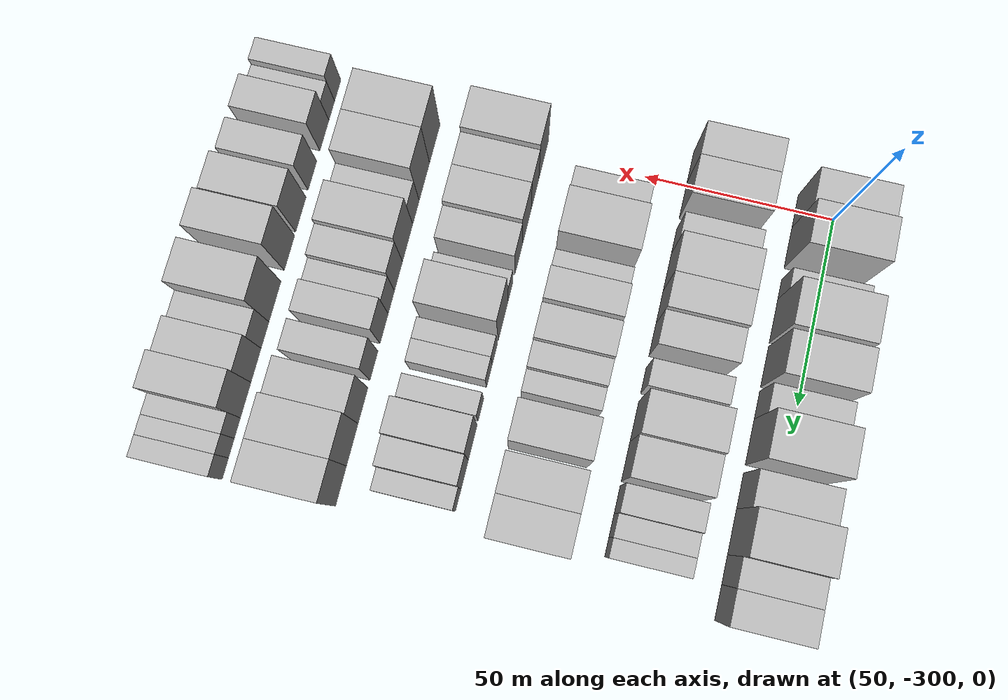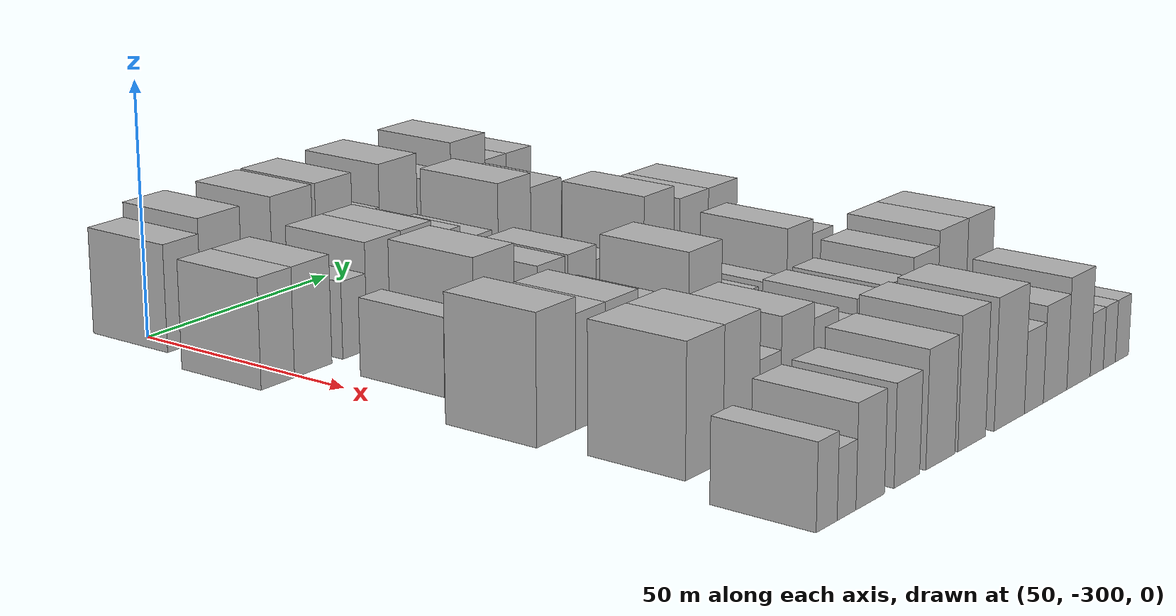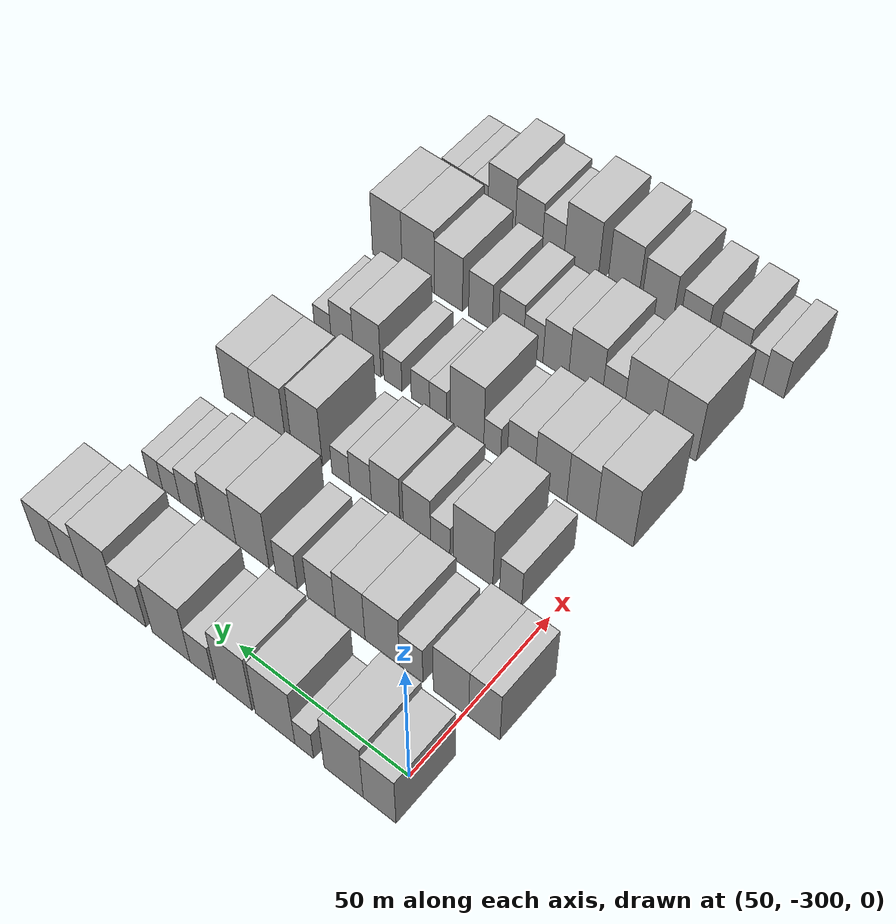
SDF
<sdf version="1.6">
 <world name="default">
  <model name="building_26">
   <static>1</static>
   <pose>50.0000 -300.0357 0 0.000000 0.000000 0.000000</pose>
   <link name="link">
    <pose>0 0 10.50 0 0 0</pose>
    <collision name="collision"><geometry><box><size>20.0000 9.1967 21.0000</size></box></geometry></collision>
    <visual name="visual">
     <cast_shadows>0</cast_shadows>
     <geometry><box><size>20.0000 9.1967 21.0000</size></box></geometry>
     <material>
      <script>
       <uri>model://HANNAS_wall/materials/scripts</uri>
       <uri>model://HANNAS_wall/materials/textures</uri>
       <name>vrc/HANNAS_wall</name>
      </script>
     </material>
    </visual>
   </link>
  </model>
  <model name="building_27">
   <static>1</static>
   <pose>50.0000 -289.8618 0 0.000000 0.000000 0.000000</pose>
   <link name="link">
    <pose>0 0 12.00 0 0 0</pose>
    <collision name="collision"><geometry><box><size>20.0000 11.1511 24.0000</size></box></geometry></collision>
    <visual name="visual">
     <cast_shadows>0</cast_shadows>
     <geometry><box><size>20.0000 11.1511 24.0000</size></box></geometry>
     <material>
      <script>
       <uri>model://HANNAS_wall/materials/scripts</uri>
       <uri>model://HANNAS_wall/materials/textures</uri>
       <name>vrc/HANNAS_wall</name>
      </script>
     </material>
    </visual>
   </link>
  </model>
  <model name="building_28">
   <static>1</static>
   <pose>50.0000 -278.5699 0 0.000000 0.000000 0.000000</pose>
   <link name="link">
    <pose>0 0 6.00 0 0 0</pose>
    <collision name="collision"><geometry><box><size>20.0000 5.4326 12.0000</size></box></geometry></collision>
    <visual name="visual">
     <cast_shadows>0</cast_shadows>
     <geometry><box><size>20.0000 5.4326 12.0000</size></box></geometry>
     <material>
      <script>
       <uri>model://HANNAS_wall/materials/scripts</uri>
       <uri>model://HANNAS_wall/materials/textures</uri>
       <name>vrc/HANNAS_wall</name>
      </script>
     </material>
    </visual>
   </link>
  </model>
  <model name="building_29">
   <static>1</static>
   <pose>50.0000 -270.0083 0 0.000000 0.000000 0.000000</pose>
   <link name="link">
    <pose>0 0 12.00 0 0 0</pose>
    <collision name="collision"><geometry><box><size>20.0000 11.6905 24.0000</size></box></geometry></collision>
    <visual name="visual">
     <cast_shadows>0</cast_shadows>
     <geometry><box><size>20.0000 11.6905 24.0000</size></box></geometry>
     <material>
      <script>
       <uri>model://HANNAS_wall/materials/scripts</uri>
       <uri>model://HANNAS_wall/materials/textures</uri>
       <name>vrc/HANNAS_wall</name>
      </script>
     </material>
    </visual>
   </link>
  </model>
  <model name="building_30">
   <static>1</static>
   <pose>50.0000 -257.8183 0 0.000000 0.000000 0.000000</pose>
   <link name="link">
    <pose>0 0 12.00 0 0 0</pose>
    <collision name="collision"><geometry><box><size>20.0000 10.6895 24.0000</size></box></geometry></collision>
    <visual name="visual">
     <cast_shadows>0</cast_shadows>
     <geometry><box><size>20.0000 10.6895 24.0000</size></box></geometry>
     <material>
      <script>
       <uri>model://HANNAS_wall/materials/scripts</uri>
       <uri>model://HANNAS_wall/materials/textures</uri>
       <name>vrc/HANNAS_wall</name>
      </script>
     </material>
    </visual>
   </link>
  </model>
  <model name="building_31">
   <static>1</static>
   <pose>50.0000 -247.8544 0 0.000000 0.000000 0.000000</pose>
   <link name="link">
    <pose>0 0 7.50 0 0 0</pose>
    <collision name="collision"><geometry><box><size>20.0000 7.2383 15.0000</size></box></geometry></collision>
    <visual name="visual">
     <cast_shadows>0</cast_shadows>
     <geometry><box><size>20.0000 7.2383 15.0000</size></box></geometry>
     <material>
      <script>
       <uri>model://HANNAS_wall/materials/scripts</uri>
       <uri>model://HANNAS_wall/materials/textures</uri>
       <name>vrc/HANNAS_wall</name>
      </script>
     </material>
    </visual>
   </link>
  </model>
  <model name="building_32">
   <static>1</static>
   <pose>50.0000 -238.3556 0 0.000000 0.000000 0.000000</pose>
   <link name="link">
    <pose>0 0 12.00 0 0 0</pose>
    <collision name="collision"><geometry><box><size>20.0000 11.7593 24.0000</size></box></geometry></collision>
    <visual name="visual">
     <cast_shadows>0</cast_shadows>
     <geometry><box><size>20.0000 11.7593 24.0000</size></box></geometry>
     <material>
      <script>
       <uri>model://HANNAS_wall/materials/scripts</uri>
       <uri>model://HANNAS_wall/materials/textures</uri>
       <name>vrc/HANNAS_wall</name>
      </script>
     </material>
    </visual>
   </link>
  </model>
  <model name="building_33">
   <static>1</static>
   <pose>50.0000 -225.9797 0 0.000000 0.000000 0.000000</pose>
   <link name="link">
    <pose>0 0 9.00 0 0 0</pose>
    <collision name="collision"><geometry><box><size>20.0000 8.9925 18.0000</size></box></geometry></collision>
    <visual name="visual">
     <cast_shadows>0</cast_shadows>
     <geometry><box><size>20.0000 8.9925 18.0000</size></box></geometry>
     <material>
      <script>
       <uri>model://HANNAS_wall/materials/scripts</uri>
       <uri>model://HANNAS_wall/materials/textures</uri>
       <name>vrc/HANNAS_wall</name>
      </script>
     </material>
    </visual>
   </link>
  </model>
  <model name="building_34">
   <static>1</static>
   <pose>50.0000 -215.8119 0 0.000000 0.000000 0.000000</pose>
   <link name="link">
    <pose>0 0 12.00 0 0 0</pose>
    <collision name="collision"><geometry><box><size>20.0000 11.3429 24.0000</size></box></geometry></collision>
    <visual name="visual">
     <cast_shadows>0</cast_shadows>
     <geometry><box><size>20.0000 11.3429 24.0000</size></box></geometry>
     <material>
      <script>
       <uri>model://HANNAS_wall/materials/scripts</uri>
       <uri>model://HANNAS_wall/materials/textures</uri>
       <name>vrc/HANNAS_wall</name>
      </script>
     </material>
    </visual>
   </link>
  </model>
  <model name="building_35">
   <static>1</static>
   <pose>50.0000 -206.5298 0 0.000000 0.000000 0.000000</pose>
   <link name="link">
    <pose>0 0 9.00 0 0 0</pose>
    <collision name="collision"><geometry><box><size>20.0000 7.2213 18.0000</size></box></geometry></collision>
    <visual name="visual">
     <cast_shadows>0</cast_shadows>
     <geometry><box><size>20.0000 7.2213 18.0000</size></box></geometry>
     <material>
      <script>
       <uri>model://HANNAS_wall/materials/scripts</uri>
       <uri>model://HANNAS_wall/materials/textures</uri>
       <name>vrc/HANNAS_wall</name>
      </script>
     </material>
    </visual>
   </link>
  </model>
  <model name="building_36">
   <static>1</static>
   <pose>50.0000 -198.6016 0 0.000000 0.000000 0.000000</pose>
   <link name="link">
    <pose>0 0 9.00 0 0 0</pose>
    <collision name="collision"><geometry><box><size>20.0000 8.6353 18.0000</size></box></geometry></collision>
    <visual name="visual">
     <cast_shadows>0</cast_shadows>
     <geometry><box><size>20.0000 8.6353 18.0000</size></box></geometry>
     <material>
      <script>
       <uri>model://HANNAS_wall/materials/scripts</uri>
       <uri>model://HANNAS_wall/materials/textures</uri>
       <name>vrc/HANNAS_wall</name>
      </script>
     </material>
    </visual>
   </link>
  </model>
  <model name="building_144">
   <static>1</static>
   <pose>79.0000 -305.4502 0 0.000000 0.000000 0.000000</pose>
   <link name="link">
    <pose>0 0 10.50 0 0 0</pose>
    <collision name="collision"><geometry><box><size>20.0000 8.7428 21.0000</size></box></geometry></collision>
    <visual name="visual">
     <cast_shadows>0</cast_shadows>
     <geometry><box><size>20.0000 8.7428 21.0000</size></box></geometry>
     <material>
      <script>
       <uri>model://HANNAS_wall/materials/scripts</uri>
       <uri>model://HANNAS_wall/materials/textures</uri>
       <name>vrc/HANNAS_wall</name>
      </script>
     </material>
    </visual>
   </link>
  </model>
  <model name="building_145">
   <static>1</static>
   <pose>79.0000 -296.0366 0 0.000000 0.000000 0.000000</pose>
   <link name="link">
    <pose>0 0 10.50 0 0 0</pose>
    <collision name="collision"><geometry><box><size>20.0000 10.0844 21.0000</size></box></geometry></collision>
    <visual name="visual">
     <cast_shadows>0</cast_shadows>
     <geometry><box><size>20.0000 10.0844 21.0000</size></box></geometry>
     <material>
      <script>
       <uri>model://HANNAS_wall/materials/scripts</uri>
       <uri>model://HANNAS_wall/materials/textures</uri>
       <name>vrc/HANNAS_wall</name>
      </script>
     </material>
    </visual>
   </link>
  </model>
  <model name="building_146">
   <static>1</static>
   <pose>79.0000 -284.6051 0 0.000000 0.000000 0.000000</pose>
   <link name="link">
    <pose>0 0 7.50 0 0 0</pose>
    <collision name="collision"><geometry><box><size>20.0000 6.7785 15.0000</size></box></geometry></collision>
    <visual name="visual">
     <cast_shadows>0</cast_shadows>
     <geometry><box><size>20.0000 6.7785 15.0000</size></box></geometry>
     <material>
      <script>
       <uri>model://HANNAS_wall/materials/scripts</uri>
       <uri>model://HANNAS_wall/materials/textures</uri>
       <name>vrc/HANNAS_wall</name>
      </script>
     </material>
    </visual>
   </link>
  </model>
  <model name="building_147">
   <static>1</static>
   <pose>79.0000 -276.1323 0 0.000000 0.000000 0.000000</pose>
   <link name="link">
    <pose>0 0 10.50 0 0 0</pose>
    <collision name="collision"><geometry><box><size>20.0000 10.1673 21.0000</size></box></geometry></collision>
    <visual name="visual">
     <cast_shadows>0</cast_shadows>
     <geometry><box><size>20.0000 10.1673 21.0000</size></box></geometry>
     <material>
      <script>
       <uri>model://HANNAS_wall/materials/scripts</uri>
       <uri>model://HANNAS_wall/materials/textures</uri>
       <name>vrc/HANNAS_wall</name>
      </script>
     </material>
    </visual>
   </link>
  </model>
  <model name="building_148">
   <static>1</static>
   <pose>79.0000 -266.6041 0 0.000000 0.000000 0.000000</pose>
   <link name="link">
    <pose>0 0 10.50 0 0 0</pose>
    <collision name="collision"><geometry><box><size>20.0000 8.8890 21.0000</size></box></geometry></collision>
    <visual name="visual">
     <cast_shadows>0</cast_shadows>
     <geometry><box><size>20.0000 8.8890 21.0000</size></box></geometry>
     <material>
      <script>
       <uri>model://HANNAS_wall/materials/scripts</uri>
       <uri>model://HANNAS_wall/materials/textures</uri>
       <name>vrc/HANNAS_wall</name>
      </script>
     </material>
    </visual>
   </link>
  </model>
  <model name="building_149">
   <static>1</static>
   <pose>79.0000 -257.8582 0 0.000000 0.000000 0.000000</pose>
   <link name="link">
    <pose>0 0 9.00 0 0 0</pose>
    <collision name="collision"><geometry><box><size>20.0000 8.6028 18.0000</size></box></geometry></collision>
    <visual name="visual">
     <cast_shadows>0</cast_shadows>
     <geometry><box><size>20.0000 8.6028 18.0000</size></box></geometry>
     <material>
      <script>
       <uri>model://HANNAS_wall/materials/scripts</uri>
       <uri>model://HANNAS_wall/materials/textures</uri>
       <name>vrc/HANNAS_wall</name>
      </script>
     </material>
    </visual>
   </link>
  </model>
  <model name="building_150">
   <static>1</static>
   <pose>79.0000 -247.1641 0 0.000000 0.000000 0.000000</pose>
   <link name="link">
    <pose>0 0 7.50 0 0 0</pose>
    <collision name="collision"><geometry><box><size>20.0000 6.7855 15.0000</size></box></geometry></collision>
    <visual name="visual">
     <cast_shadows>0</cast_shadows>
     <geometry><box><size>20.0000 6.7855 15.0000</size></box></geometry>
     <material>
      <script>
       <uri>model://HANNAS_wall/materials/scripts</uri>
       <uri>model://HANNAS_wall/materials/textures</uri>
       <name>vrc/HANNAS_wall</name>
      </script>
     </material>
    </visual>
   </link>
  </model>
  <model name="building_151">
   <static>1</static>
   <pose>79.0000 -236.5368 0 0.000000 0.000000 0.000000</pose>
   <link name="link">
    <pose>0 0 12.00 0 0 0</pose>
    <collision name="collision"><geometry><box><size>20.0000 10.4691 24.0000</size></box></geometry></collision>
    <visual name="visual">
     <cast_shadows>0</cast_shadows>
     <geometry><box><size>20.0000 10.4691 24.0000</size></box></geometry>
     <material>
      <script>
       <uri>model://HANNAS_wall/materials/scripts</uri>
       <uri>model://HANNAS_wall/materials/textures</uri>
       <name>vrc/HANNAS_wall</name>
      </script>
     </material>
    </visual>
   </link>
  </model>
  <model name="building_152">
   <static>1</static>
   <pose>79.0000 -226.2851 0 0.000000 0.000000 0.000000</pose>
   <link name="link">
    <pose>0 0 10.50 0 0 0</pose>
    <collision name="collision"><geometry><box><size>20.0000 10.0344 21.0000</size></box></geometry></collision>
    <visual name="visual">
     <cast_shadows>0</cast_shadows>
     <geometry><box><size>20.0000 10.0344 21.0000</size></box></geometry>
     <material>
      <script>
       <uri>model://HANNAS_wall/materials/scripts</uri>
       <uri>model://HANNAS_wall/materials/textures</uri>
       <name>vrc/HANNAS_wall</name>
      </script>
     </material>
    </visual>
   </link>
  </model>
  <model name="building_153">
   <static>1</static>
   <pose>79.0000 -216.7410 0 0.000000 0.000000 0.000000</pose>
   <link name="link">
    <pose>0 0 7.50 0 0 0</pose>
    <collision name="collision"><geometry><box><size>20.0000 7.0537 15.0000</size></box></geometry></collision>
    <visual name="visual">
     <cast_shadows>0</cast_shadows>
     <geometry><box><size>20.0000 7.0537 15.0000</size></box></geometry>
     <material>
      <script>
       <uri>model://HANNAS_wall/materials/scripts</uri>
       <uri>model://HANNAS_wall/materials/textures</uri>
       <name>vrc/HANNAS_wall</name>
      </script>
     </material>
    </visual>
   </link>
  </model>
  <model name="building_154">
   <static>1</static>
   <pose>79.0000 -210.3074 0 0.000000 0.000000 0.000000</pose>
   <link name="link">
    <pose>0 0 6.00 0 0 0</pose>
    <collision name="collision"><geometry><box><size>20.0000 5.8135 12.0000</size></box></geometry></collision>
    <visual name="visual">
     <cast_shadows>0</cast_shadows>
     <geometry><box><size>20.0000 5.8135 12.0000</size></box></geometry>
     <material>
      <script>
       <uri>model://HANNAS_wall/materials/scripts</uri>
       <uri>model://HANNAS_wall/materials/textures</uri>
       <name>vrc/HANNAS_wall</name>
      </script>
     </material>
    </visual>
   </link>
  </model>
  <model name="building_155">
   <static>1</static>
   <pose>79.0000 -205.0001 0 0.000000 0.000000 0.000000</pose>
   <link name="link">
    <pose>0 0 6.00 0 0 0</pose>
    <collision name="collision"><geometry><box><size>20.0000 4.8011 12.0000</size></box></geometry></collision>
    <visual name="visual">
     <cast_shadows>0</cast_shadows>
     <geometry><box><size>20.0000 4.8011 12.0000</size></box></geometry>
     <material>
      <script>
       <uri>model://HANNAS_wall/materials/scripts</uri>
       <uri>model://HANNAS_wall/materials/textures</uri>
       <name>vrc/HANNAS_wall</name>
      </script>
     </material>
    </visual>
   </link>
  </model>
  <model name="building_255">
   <static>1</static>
   <pose>108.0000 -290.0336 0 0.000000 0.000000 0.000000</pose>
   <link name="link">
    <pose>0 0 7.50 0 0 0</pose>
    <collision name="collision"><geometry><box><size>20.0000 6.3889 15.0000</size></box></geometry></collision>
    <visual name="visual">
     <cast_shadows>0</cast_shadows>
     <geometry><box><size>20.0000 6.3889 15.0000</size></box></geometry>
     <material>
      <script>
       <uri>model://HANNAS_wall/materials/scripts</uri>
       <uri>model://HANNAS_wall/materials/textures</uri>
       <name>vrc/HANNAS_wall</name>
      </script>
     </material>
    </visual>
   </link>
  </model>
  <model name="building_256">
   <static>1</static>
   <pose>108.0000 -278.9771 0 0.000000 0.000000 0.000000</pose>
   <link name="link">
    <pose>0 0 12.00 0 0 0</pose>
    <collision name="collision"><geometry><box><size>20.0000 11.7242 24.0000</size></box></geometry></collision>
    <visual name="visual">
     <cast_shadows>0</cast_shadows>
     <geometry><box><size>20.0000 11.7242 24.0000</size></box></geometry>
     <material>
      <script>
       <uri>model://HANNAS_wall/materials/scripts</uri>
       <uri>model://HANNAS_wall/materials/textures</uri>
       <name>vrc/HANNAS_wall</name>
      </script>
     </material>
    </visual>
   </link>
  </model>
  <model name="building_257">
   <static>1</static>
   <pose>108.0000 -269.1946 0 0.000000 0.000000 0.000000</pose>
   <link name="link">
    <pose>0 0 6.00 0 0 0</pose>
    <collision name="collision"><geometry><box><size>20.0000 5.8407 12.0000</size></box></geometry></collision>
    <visual name="visual">
     <cast_shadows>0</cast_shadows>
     <geometry><box><size>20.0000 5.8407 12.0000</size></box></geometry>
     <material>
      <script>
       <uri>model://HANNAS_wall/materials/scripts</uri>
       <uri>model://HANNAS_wall/materials/textures</uri>
       <name>vrc/HANNAS_wall</name>
      </script>
     </material>
    </visual>
   </link>
  </model>
  <model name="building_258">
   <static>1</static>
   <pose>108.0000 -262.1214 0 0.000000 0.000000 0.000000</pose>
   <link name="link">
    <pose>0 0 9.00 0 0 0</pose>
    <collision name="collision"><geometry><box><size>20.0000 8.3058 18.0000</size></box></geometry></collision>
    <visual name="visual">
     <cast_shadows>0</cast_shadows>
     <geometry><box><size>20.0000 8.3058 18.0000</size></box></geometry>
     <material>
      <script>
       <uri>model://HANNAS_wall/materials/scripts</uri>
       <uri>model://HANNAS_wall/materials/textures</uri>
       <name>vrc/HANNAS_wall</name>
      </script>
     </material>
    </visual>
   </link>
  </model>
  <model name="building_259">
   <static>1</static>
   <pose>108.0000 -252.5259 0 0.000000 0.000000 0.000000</pose>
   <link name="link">
    <pose>0 0 9.00 0 0 0</pose>
    <collision name="collision"><geometry><box><size>20.0000 8.8851 18.0000</size></box></geometry></collision>
    <visual name="visual">
     <cast_shadows>0</cast_shadows>
     <geometry><box><size>20.0000 8.8851 18.0000</size></box></geometry>
     <material>
      <script>
       <uri>model://HANNAS_wall/materials/scripts</uri>
       <uri>model://HANNAS_wall/materials/textures</uri>
       <name>vrc/HANNAS_wall</name>
      </script>
     </material>
    </visual>
   </link>
  </model>
  <model name="building_260">
   <static>1</static>
   <pose>108.0000 -244.7312 0 0.000000 0.000000 0.000000</pose>
   <link name="link">
    <pose>0 0 7.50 0 0 0</pose>
    <collision name="collision"><geometry><box><size>20.0000 6.7045 15.0000</size></box></geometry></collision>
    <visual name="visual">
     <cast_shadows>0</cast_shadows>
     <geometry><box><size>20.0000 6.7045 15.0000</size></box></geometry>
     <material>
      <script>
       <uri>model://HANNAS_wall/materials/scripts</uri>
       <uri>model://HANNAS_wall/materials/textures</uri>
       <name>vrc/HANNAS_wall</name>
      </script>
     </material>
    </visual>
   </link>
  </model>
  <model name="building_261">
   <static>1</static>
   <pose>108.0000 -238.5270 0 0.000000 0.000000 0.000000</pose>
   <link name="link">
    <pose>0 0 6.00 0 0 0</pose>
    <collision name="collision"><geometry><box><size>20.0000 5.7040 12.0000</size></box></geometry></collision>
    <visual name="visual">
     <cast_shadows>0</cast_shadows>
     <geometry><box><size>20.0000 5.7040 12.0000</size></box></geometry>
     <material>
      <script>
       <uri>model://HANNAS_wall/materials/scripts</uri>
       <uri>model://HANNAS_wall/materials/textures</uri>
       <name>vrc/HANNAS_wall</name>
      </script>
     </material>
    </visual>
   </link>
  </model>
  <model name="building_262">
   <static>1</static>
   <pose>108.0000 -227.6270 0 0.000000 0.000000 0.000000</pose>
   <link name="link">
    <pose>0 0 12.00 0 0 0</pose>
    <collision name="collision"><geometry><box><size>20.0000 10.0960 24.0000</size></box></geometry></collision>
    <visual name="visual">
     <cast_shadows>0</cast_shadows>
     <geometry><box><size>20.0000 10.0960 24.0000</size></box></geometry>
     <material>
      <script>
       <uri>model://HANNAS_wall/materials/scripts</uri>
       <uri>model://HANNAS_wall/materials/textures</uri>
       <name>vrc/HANNAS_wall</name>
      </script>
     </material>
    </visual>
   </link>
  </model>
  <model name="building_263">
   <static>1</static>
   <pose>108.0000 -215.5862 0 0.000000 0.000000 0.000000</pose>
   <link name="link">
    <pose>0 0 10.50 0 0 0</pose>
    <collision name="collision"><geometry><box><size>20.0000 9.9856 21.0000</size></box></geometry></collision>
    <visual name="visual">
     <cast_shadows>0</cast_shadows>
     <geometry><box><size>20.0000 9.9856 21.0000</size></box></geometry>
     <material>
      <script>
       <uri>model://HANNAS_wall/materials/scripts</uri>
       <uri>model://HANNAS_wall/materials/textures</uri>
       <name>vrc/HANNAS_wall</name>
      </script>
     </material>
    </visual>
   </link>
  </model>
  <model name="building_264">
   <static>1</static>
   <pose>108.0000 -205.4645 0 0.000000 0.000000 0.000000</pose>
   <link name="link">
    <pose>0 0 10.50 0 0 0</pose>
    <collision name="collision"><geometry><box><size>20.0000 10.2579 21.0000</size></box></geometry></collision>
    <visual name="visual">
     <cast_shadows>0</cast_shadows>
     <geometry><box><size>20.0000 10.2579 21.0000</size></box></geometry>
     <material>
      <script>
       <uri>model://HANNAS_wall/materials/scripts</uri>
       <uri>model://HANNAS_wall/materials/textures</uri>
       <name>vrc/HANNAS_wall</name>
      </script>
     </material>
    </visual>
   </link>
  </model>
  <model name="building_368">
   <static>1</static>
   <pose>137.0000 -298.2834 0 0.000000 0.000000 0.000000</pose>
   <link name="link">
    <pose>0 0 12.00 0 0 0</pose>
    <collision name="collision"><geometry><box><size>20.0000 10.9242 24.0000</size></box></geometry></collision>
    <visual name="visual">
     <cast_shadows>0</cast_shadows>
     <geometry><box><size>20.0000 10.9242 24.0000</size></box></geometry>
     <material>
      <script>
       <uri>model://HANNAS_wall/materials/scripts</uri>
       <uri>model://HANNAS_wall/materials/textures</uri>
       <name>vrc/HANNAS_wall</name>
      </script>
     </material>
    </visual>
   </link>
  </model>
  <model name="building_369">
   <static>1</static>
   <pose>137.0000 -288.5606 0 0.000000 0.000000 0.000000</pose>
   <link name="link">
    <pose>0 0 10.50 0 0 0</pose>
    <collision name="collision"><geometry><box><size>20.0000 8.5214 21.0000</size></box></geometry></collision>
    <visual name="visual">
     <cast_shadows>0</cast_shadows>
     <geometry><box><size>20.0000 8.5214 21.0000</size></box></geometry>
     <material>
      <script>
       <uri>model://HANNAS_wall/materials/scripts</uri>
       <uri>model://HANNAS_wall/materials/textures</uri>
       <name>vrc/HANNAS_wall</name>
      </script>
     </material>
    </visual>
   </link>
  </model>
  <model name="building_370">
   <static>1</static>
   <pose>137.0000 -279.4812 0 0.000000 0.000000 0.000000</pose>
   <link name="link">
    <pose>0 0 10.50 0 0 0</pose>
    <collision name="collision"><geometry><box><size>20.0000 9.6374 21.0000</size></box></geometry></collision>
    <visual name="visual">
     <cast_shadows>0</cast_shadows>
     <geometry><box><size>20.0000 9.6374 21.0000</size></box></geometry>
     <material>
      <script>
       <uri>model://HANNAS_wall/materials/scripts</uri>
       <uri>model://HANNAS_wall/materials/textures</uri>
       <name>vrc/HANNAS_wall</name>
      </script>
     </material>
    </visual>
   </link>
  </model>
  <model name="building_371">
   <static>1</static>
   <pose>137.0000 -270.4664 0 0.000000 0.000000 0.000000</pose>
   <link name="link">
    <pose>0 0 9.00 0 0 0</pose>
    <collision name="collision"><geometry><box><size>20.0000 8.3921 18.0000</size></box></geometry></collision>
    <visual name="visual">
     <cast_shadows>0</cast_shadows>
     <geometry><box><size>20.0000 8.3921 18.0000</size></box></geometry>
     <material>
      <script>
       <uri>model://HANNAS_wall/materials/scripts</uri>
       <uri>model://HANNAS_wall/materials/textures</uri>
       <name>vrc/HANNAS_wall</name>
      </script>
     </material>
    </visual>
   </link>
  </model>
  <model name="building_372">
   <static>1</static>
   <pose>137.0000 -261.6671 0 0.000000 0.000000 0.000000</pose>
   <link name="link">
    <pose>0 0 6.00 0 0 0</pose>
    <collision name="collision"><geometry><box><size>20.0000 5.2066 12.0000</size></box></geometry></collision>
    <visual name="visual">
     <cast_shadows>0</cast_shadows>
     <geometry><box><size>20.0000 5.2066 12.0000</size></box></geometry>
     <material>
      <script>
       <uri>model://HANNAS_wall/materials/scripts</uri>
       <uri>model://HANNAS_wall/materials/textures</uri>
       <name>vrc/HANNAS_wall</name>
      </script>
     </material>
    </visual>
   </link>
  </model>
  <model name="building_373">
   <static>1</static>
   <pose>137.0000 -253.7947 0 0.000000 0.000000 0.000000</pose>
   <link name="link">
    <pose>0 0 12.00 0 0 0</pose>
    <collision name="collision"><geometry><box><size>20.0000 10.5382 24.0000</size></box></geometry></collision>
    <visual name="visual">
     <cast_shadows>0</cast_shadows>
     <geometry><box><size>20.0000 10.5382 24.0000</size></box></geometry>
     <material>
      <script>
       <uri>model://HANNAS_wall/materials/scripts</uri>
       <uri>model://HANNAS_wall/materials/textures</uri>
       <name>vrc/HANNAS_wall</name>
      </script>
     </material>
    </visual>
   </link>
  </model>
  <model name="building_374">
   <static>1</static>
   <pose>137.0000 -244.8099 0 0.000000 0.000000 0.000000</pose>
   <link name="link">
    <pose>0 0 6.00 0 0 0</pose>
    <collision name="collision"><geometry><box><size>20.0000 5.4313 12.0000</size></box></geometry></collision>
    <visual name="visual">
     <cast_shadows>0</cast_shadows>
     <geometry><box><size>20.0000 5.4313 12.0000</size></box></geometry>
     <material>
      <script>
       <uri>model://HANNAS_wall/materials/scripts</uri>
       <uri>model://HANNAS_wall/materials/textures</uri>
       <name>vrc/HANNAS_wall</name>
      </script>
     </material>
    </visual>
   </link>
  </model>
  <model name="building_375">
   <static>1</static>
   <pose>137.0000 -239.1706 0 0.000000 0.000000 0.000000</pose>
   <link name="link">
    <pose>0 0 6.00 0 0 0</pose>
    <collision name="collision"><geometry><box><size>20.0000 5.8474 12.0000</size></box></geometry></collision>
    <visual name="visual">
     <cast_shadows>0</cast_shadows>
     <geometry><box><size>20.0000 5.8474 12.0000</size></box></geometry>
     <material>
      <script>
       <uri>model://HANNAS_wall/materials/scripts</uri>
       <uri>model://HANNAS_wall/materials/textures</uri>
       <name>vrc/HANNAS_wall</name>
      </script>
     </material>
    </visual>
   </link>
  </model>
  <model name="building_376">
   <static>1</static>
   <pose>137.0000 -230.3311 0 0.000000 0.000000 0.000000</pose>
   <link name="link">
    <pose>0 0 6.00 0 0 0</pose>
    <collision name="collision"><geometry><box><size>20.0000 5.8314 12.0000</size></box></geometry></collision>
    <visual name="visual">
     <cast_shadows>0</cast_shadows>
     <geometry><box><size>20.0000 5.8314 12.0000</size></box></geometry>
     <material>
      <script>
       <uri>model://HANNAS_wall/materials/scripts</uri>
       <uri>model://HANNAS_wall/materials/textures</uri>
       <name>vrc/HANNAS_wall</name>
      </script>
     </material>
    </visual>
   </link>
  </model>
  <model name="building_377">
   <static>1</static>
   <pose>137.0000 -221.9690 0 0.000000 0.000000 0.000000</pose>
   <link name="link">
    <pose>0 0 10.50 0 0 0</pose>
    <collision name="collision"><geometry><box><size>20.0000 8.8928 21.0000</size></box></geometry></collision>
    <visual name="visual">
     <cast_shadows>0</cast_shadows>
     <geometry><box><size>20.0000 8.8928 21.0000</size></box></geometry>
     <material>
      <script>
       <uri>model://HANNAS_wall/materials/scripts</uri>
       <uri>model://HANNAS_wall/materials/textures</uri>
       <name>vrc/HANNAS_wall</name>
      </script>
     </material>
    </visual>
   </link>
  </model>
  <model name="building_378">
   <static>1</static>
   <pose>137.0000 -213.8255 0 0.000000 0.000000 0.000000</pose>
   <link name="link">
    <pose>0 0 9.00 0 0 0</pose>
    <collision name="collision"><geometry><box><size>20.0000 7.3942 18.0000</size></box></geometry></collision>
    <visual name="visual">
     <cast_shadows>0</cast_shadows>
     <geometry><box><size>20.0000 7.3942 18.0000</size></box></geometry>
     <material>
      <script>
       <uri>model://HANNAS_wall/materials/scripts</uri>
       <uri>model://HANNAS_wall/materials/textures</uri>
       <name>vrc/HANNAS_wall</name>
      </script>
     </material>
    </visual>
   </link>
  </model>
  <model name="building_379">
   <static>1</static>
   <pose>137.0000 -207.3328 0 0.000000 0.000000 0.000000</pose>
   <link name="link">
    <pose>0 0 6.00 0 0 0</pose>
    <collision name="collision"><geometry><box><size>20.0000 5.5912 12.0000</size></box></geometry></collision>
    <visual name="visual">
     <cast_shadows>0</cast_shadows>
     <geometry><box><size>20.0000 5.5912 12.0000</size></box></geometry>
     <material>
      <script>
       <uri>model://HANNAS_wall/materials/scripts</uri>
       <uri>model://HANNAS_wall/materials/textures</uri>
       <name>vrc/HANNAS_wall</name>
      </script>
     </material>
    </visual>
   </link>
  </model>
  <model name="building_479">
   <static>1</static>
   <pose>166.0000 -295.9615 0 0.000000 0.000000 0.000000</pose>
   <link name="link">
    <pose>0 0 12.00 0 0 0</pose>
    <collision name="collision"><geometry><box><size>20.0000 10.9480 24.0000</size></box></geometry></collision>
    <visual name="visual">
     <cast_shadows>0</cast_shadows>
     <geometry><box><size>20.0000 10.9480 24.0000</size></box></geometry>
     <material>
      <script>
       <uri>model://HANNAS_wall/materials/scripts</uri>
       <uri>model://HANNAS_wall/materials/textures</uri>
       <name>vrc/HANNAS_wall</name>
      </script>
     </material>
    </visual>
   </link>
  </model>
  <model name="building_480">
   <static>1</static>
   <pose>166.0000 -285.1419 0 0.000000 0.000000 0.000000</pose>
   <link name="link">
    <pose>0 0 12.00 0 0 0</pose>
    <collision name="collision"><geometry><box><size>20.0000 10.6911 24.0000</size></box></geometry></collision>
    <visual name="visual">
     <cast_shadows>0</cast_shadows>
     <geometry><box><size>20.0000 10.6911 24.0000</size></box></geometry>
     <material>
      <script>
       <uri>model://HANNAS_wall/materials/scripts</uri>
       <uri>model://HANNAS_wall/materials/textures</uri>
       <name>vrc/HANNAS_wall</name>
      </script>
     </material>
    </visual>
   </link>
  </model>
  <model name="building_481">
   <static>1</static>
   <pose>166.0000 -276.4795 0 0.000000 0.000000 0.000000</pose>
   <link name="link">
    <pose>0 0 7.50 0 0 0</pose>
    <collision name="collision"><geometry><box><size>20.0000 6.6337 15.0000</size></box></geometry></collision>
    <visual name="visual">
     <cast_shadows>0</cast_shadows>
     <geometry><box><size>20.0000 6.6337 15.0000</size></box></geometry>
     <material>
      <script>
       <uri>model://HANNAS_wall/materials/scripts</uri>
       <uri>model://HANNAS_wall/materials/textures</uri>
       <name>vrc/HANNAS_wall</name>
      </script>
     </material>
    </visual>
   </link>
  </model>
  <model name="building_482">
   <static>1</static>
   <pose>166.0000 -268.0143 0 0.000000 0.000000 0.000000</pose>
   <link name="link">
    <pose>0 0 10.50 0 0 0</pose>
    <collision name="collision"><geometry><box><size>20.0000 10.2967 21.0000</size></box></geometry></collision>
    <visual name="visual">
     <cast_shadows>0</cast_shadows>
     <geometry><box><size>20.0000 10.2967 21.0000</size></box></geometry>
     <material>
      <script>
       <uri>model://HANNAS_wall/materials/scripts</uri>
       <uri>model://HANNAS_wall/materials/textures</uri>
       <name>vrc/HANNAS_wall</name>
      </script>
     </material>
    </visual>
   </link>
  </model>
  <model name="building_483">
   <static>1</static>
   <pose>166.0000 -258.8761 0 0.000000 0.000000 0.000000</pose>
   <link name="link">
    <pose>0 0 9.00 0 0 0</pose>
    <collision name="collision"><geometry><box><size>20.0000 7.9797 18.0000</size></box></geometry></collision>
    <visual name="visual">
     <cast_shadows>0</cast_shadows>
     <geometry><box><size>20.0000 7.9797 18.0000</size></box></geometry>
     <material>
      <script>
       <uri>model://HANNAS_wall/materials/scripts</uri>
       <uri>model://HANNAS_wall/materials/textures</uri>
       <name>vrc/HANNAS_wall</name>
      </script>
     </material>
    </visual>
   </link>
  </model>
  <model name="building_484">
   <static>1</static>
   <pose>166.0000 -251.7826 0 0.000000 0.000000 0.000000</pose>
   <link name="link">
    <pose>0 0 7.50 0 0 0</pose>
    <collision name="collision"><geometry><box><size>20.0000 6.2073 15.0000</size></box></geometry></collision>
    <visual name="visual">
     <cast_shadows>0</cast_shadows>
     <geometry><box><size>20.0000 6.2073 15.0000</size></box></geometry>
     <material>
      <script>
       <uri>model://HANNAS_wall/materials/scripts</uri>
       <uri>model://HANNAS_wall/materials/textures</uri>
       <name>vrc/HANNAS_wall</name>
      </script>
     </material>
    </visual>
   </link>
  </model>
  <model name="building_485">
   <static>1</static>
   <pose>166.0000 -244.7008 0 0.000000 0.000000 0.000000</pose>
   <link name="link">
    <pose>0 0 9.00 0 0 0</pose>
    <collision name="collision"><geometry><box><size>20.0000 7.9563 18.0000</size></box></geometry></collision>
    <visual name="visual">
     <cast_shadows>0</cast_shadows>
     <geometry><box><size>20.0000 7.9563 18.0000</size></box></geometry>
     <material>
      <script>
       <uri>model://HANNAS_wall/materials/scripts</uri>
       <uri>model://HANNAS_wall/materials/textures</uri>
       <name>vrc/HANNAS_wall</name>
      </script>
     </material>
    </visual>
   </link>
  </model>
  <model name="building_486">
   <static>1</static>
   <pose>166.0000 -234.8828 0 0.000000 0.000000 0.000000</pose>
   <link name="link">
    <pose>0 0 9.00 0 0 0</pose>
    <collision name="collision"><geometry><box><size>20.0000 7.6797 18.0000</size></box></geometry></collision>
    <visual name="visual">
     <cast_shadows>0</cast_shadows>
     <geometry><box><size>20.0000 7.6797 18.0000</size></box></geometry>
     <material>
      <script>
       <uri>model://HANNAS_wall/materials/scripts</uri>
       <uri>model://HANNAS_wall/materials/textures</uri>
       <name>vrc/HANNAS_wall</name>
      </script>
     </material>
    </visual>
   </link>
  </model>
  <model name="building_487">
   <static>1</static>
   <pose>166.0000 -224.4097 0 0.000000 0.000000 0.000000</pose>
   <link name="link">
    <pose>0 0 10.50 0 0 0</pose>
    <collision name="collision"><geometry><box><size>20.0000 9.2665 21.0000</size></box></geometry></collision>
    <visual name="visual">
     <cast_shadows>0</cast_shadows>
     <geometry><box><size>20.0000 9.2665 21.0000</size></box></geometry>
     <material>
      <script>
       <uri>model://HANNAS_wall/materials/scripts</uri>
       <uri>model://HANNAS_wall/materials/textures</uri>
       <name>vrc/HANNAS_wall</name>
      </script>
     </material>
    </visual>
   </link>
  </model>
  <model name="building_488">
   <static>1</static>
   <pose>166.0000 -214.3686 0 0.000000 0.000000 0.000000</pose>
   <link name="link">
    <pose>0 0 12.00 0 0 0</pose>
    <collision name="collision"><geometry><box><size>20.0000 10.8158 24.0000</size></box></geometry></collision>
    <visual name="visual">
     <cast_shadows>0</cast_shadows>
     <geometry><box><size>20.0000 10.8158 24.0000</size></box></geometry>
     <material>
      <script>
       <uri>model://HANNAS_wall/materials/scripts</uri>
       <uri>model://HANNAS_wall/materials/textures</uri>
       <name>vrc/HANNAS_wall</name>
      </script>
     </material>
    </visual>
   </link>
  </model>
  <model name="building_489">
   <static>1</static>
   <pose>166.0000 -203.9253 0 0.000000 0.000000 0.000000</pose>
   <link name="link">
    <pose>0 0 12.00 0 0 0</pose>
    <collision name="collision"><geometry><box><size>20.0000 10.0707 24.0000</size></box></geometry></collision>
    <visual name="visual">
     <cast_shadows>0</cast_shadows>
     <geometry><box><size>20.0000 10.0707 24.0000</size></box></geometry>
     <material>
      <script>
       <uri>model://HANNAS_wall/materials/scripts</uri>
       <uri>model://HANNAS_wall/materials/textures</uri>
       <name>vrc/HANNAS_wall</name>
      </script>
     </material>
    </visual>
   </link>
  </model>
  <model name="building_595">
   <static>1</static>
   <pose>195.0000 -304.4818 0 0.000000 0.000000 0.000000</pose>
   <link name="link">
    <pose>0 0 7.50 0 0 0</pose>
    <collision name="collision"><geometry><box><size>20.0000 6.1722 15.0000</size></box></geometry></collision>
    <visual name="visual">
     <cast_shadows>0</cast_shadows>
     <geometry><box><size>20.0000 6.1722 15.0000</size></box></geometry>
     <material>
      <script>
       <uri>model://HANNAS_wall/materials/scripts</uri>
       <uri>model://HANNAS_wall/materials/textures</uri>
       <name>vrc/HANNAS_wall</name>
      </script>
     </material>
    </visual>
   </link>
  </model>
  <model name="building_596">
   <static>1</static>
   <pose>195.0000 -298.5951 0 0.000000 0.000000 0.000000</pose>
   <link name="link">
    <pose>0 0 6.00 0 0 0</pose>
    <collision name="collision"><geometry><box><size>20.0000 5.6013 12.0000</size></box></geometry></collision>
    <visual name="visual">
     <cast_shadows>0</cast_shadows>
     <geometry><box><size>20.0000 5.6013 12.0000</size></box></geometry>
     <material>
      <script>
       <uri>model://HANNAS_wall/materials/scripts</uri>
       <uri>model://HANNAS_wall/materials/textures</uri>
       <name>vrc/HANNAS_wall</name>
      </script>
     </material>
    </visual>
   </link>
  </model>
  <model name="building_597">
   <static>1</static>
   <pose>195.0000 -291.3887 0 0.000000 0.000000 0.000000</pose>
   <link name="link">
    <pose>0 0 9.00 0 0 0</pose>
    <collision name="collision"><geometry><box><size>20.0000 8.8115 18.0000</size></box></geometry></collision>
    <visual name="visual">
     <cast_shadows>0</cast_shadows>
     <geometry><box><size>20.0000 8.8115 18.0000</size></box></geometry>
     <material>
      <script>
       <uri>model://HANNAS_wall/materials/scripts</uri>
       <uri>model://HANNAS_wall/materials/textures</uri>
       <name>vrc/HANNAS_wall</name>
      </script>
     </material>
    </visual>
   </link>
  </model>
  <model name="building_598">
   <static>1</static>
   <pose>195.0000 -279.8723 0 0.000000 0.000000 0.000000</pose>
   <link name="link">
    <pose>0 0 9.00 0 0 0</pose>
    <collision name="collision"><geometry><box><size>20.0000 8.2214 18.0000</size></box></geometry></collision>
    <visual name="visual">
     <cast_shadows>0</cast_shadows>
     <geometry><box><size>20.0000 8.2214 18.0000</size></box></geometry>
     <material>
      <script>
       <uri>model://HANNAS_wall/materials/scripts</uri>
       <uri>model://HANNAS_wall/materials/textures</uri>
       <name>vrc/HANNAS_wall</name>
      </script>
     </material>
    </visual>
   </link>
  </model>
  <model name="building_599">
   <static>1</static>
   <pose>195.0000 -268.9093 0 0.000000 0.000000 0.000000</pose>
   <link name="link">
    <pose>0 0 10.50 0 0 0</pose>
    <collision name="collision"><geometry><box><size>20.0000 9.7046 21.0000</size></box></geometry></collision>
    <visual name="visual">
     <cast_shadows>0</cast_shadows>
     <geometry><box><size>20.0000 9.7046 21.0000</size></box></geometry>
     <material>
      <script>
       <uri>model://HANNAS_wall/materials/scripts</uri>
       <uri>model://HANNAS_wall/materials/textures</uri>
       <name>vrc/HANNAS_wall</name>
      </script>
     </material>
    </visual>
   </link>
  </model>
  <model name="building_600">
   <static>1</static>
   <pose>195.0000 -258.2525 0 0.000000 0.000000 0.000000</pose>
   <link name="link">
    <pose>0 0 12.00 0 0 0</pose>
    <collision name="collision"><geometry><box><size>20.0000 9.6091 24.0000</size></box></geometry></collision>
    <visual name="visual">
     <cast_shadows>0</cast_shadows>
     <geometry><box><size>20.0000 9.6091 24.0000</size></box></geometry>
     <material>
      <script>
       <uri>model://HANNAS_wall/materials/scripts</uri>
       <uri>model://HANNAS_wall/materials/textures</uri>
       <name>vrc/HANNAS_wall</name>
      </script>
     </material>
    </visual>
   </link>
  </model>
  <model name="building_601">
   <static>1</static>
   <pose>195.0000 -244.9689 0 0.000000 0.000000 0.000000</pose>
   <link name="link">
    <pose>0 0 12.00 0 0 0</pose>
    <collision name="collision"><geometry><box><size>20.0000 10.9581 24.0000</size></box></geometry></collision>
    <visual name="visual">
     <cast_shadows>0</cast_shadows>
     <geometry><box><size>20.0000 10.9581 24.0000</size></box></geometry>
     <material>
      <script>
       <uri>model://HANNAS_wall/materials/scripts</uri>
       <uri>model://HANNAS_wall/materials/textures</uri>
       <name>vrc/HANNAS_wall</name>
      </script>
     </material>
    </visual>
   </link>
  </model>
  <model name="building_602">
   <static>1</static>
   <pose>195.0000 -235.9670 0 0.000000 0.000000 0.000000</pose>
   <link name="link">
    <pose>0 0 7.50 0 0 0</pose>
    <collision name="collision"><geometry><box><size>20.0000 7.0458 15.0000</size></box></geometry></collision>
    <visual name="visual">
     <cast_shadows>0</cast_shadows>
     <geometry><box><size>20.0000 7.0458 15.0000</size></box></geometry>
     <material>
      <script>
       <uri>model://HANNAS_wall/materials/scripts</uri>
       <uri>model://HANNAS_wall/materials/textures</uri>
       <name>vrc/HANNAS_wall</name>
      </script>
     </material>
    </visual>
   </link>
  </model>
  <model name="building_603">
   <static>1</static>
   <pose>195.0000 -227.9461 0 0.000000 0.000000 0.000000</pose>
   <link name="link">
    <pose>0 0 9.00 0 0 0</pose>
    <collision name="collision"><geometry><box><size>20.0000 8.9960 18.0000</size></box></geometry></collision>
    <visual name="visual">
     <cast_shadows>0</cast_shadows>
     <geometry><box><size>20.0000 8.9960 18.0000</size></box></geometry>
     <material>
      <script>
       <uri>model://HANNAS_wall/materials/scripts</uri>
       <uri>model://HANNAS_wall/materials/textures</uri>
       <name>vrc/HANNAS_wall</name>
      </script>
     </material>
    </visual>
   </link>
  </model>
  <model name="building_604">
   <static>1</static>
   <pose>195.0000 -218.8437 0 0.000000 0.000000 0.000000</pose>
   <link name="link">
    <pose>0 0 10.50 0 0 0</pose>
    <collision name="collision"><geometry><box><size>20.0000 9.2089 21.0000</size></box></geometry></collision>
    <visual name="visual">
     <cast_shadows>0</cast_shadows>
     <geometry><box><size>20.0000 9.2089 21.0000</size></box></geometry>
     <material>
      <script>
       <uri>model://HANNAS_wall/materials/scripts</uri>
       <uri>model://HANNAS_wall/materials/textures</uri>
       <name>vrc/HANNAS_wall</name>
      </script>
     </material>
    </visual>
   </link>
  </model>
  <model name="building_605">
   <static>1</static>
   <pose>195.0000 -211.5905 0 0.000000 0.000000 0.000000</pose>
   <link name="link">
    <pose>0 0 6.00 0 0 0</pose>
    <collision name="collision"><geometry><box><size>20.0000 5.2975 12.0000</size></box></geometry></collision>
    <visual name="visual">
     <cast_shadows>0</cast_shadows>
     <geometry><box><size>20.0000 5.2975 12.0000</size></box></geometry>
     <material>
      <script>
       <uri>model://HANNAS_wall/materials/scripts</uri>
       <uri>model://HANNAS_wall/materials/textures</uri>
       <name>vrc/HANNAS_wall</name>
      </script>
     </material>
    </visual>
   </link>
  </model>
  <model name="building_606">
   <static>1</static>
   <pose>195.0000 -206.4646 0 0.000000 0.000000 0.000000</pose>
   <link name="link">
    <pose>0 0 6.00 0 0 0</pose>
    <collision name="collision"><geometry><box><size>20.0000 4.9542 12.0000</size></box></geometry></collision>
    <visual name="visual">
     <cast_shadows>0</cast_shadows>
     <geometry><box><size>20.0000 4.9542 12.0000</size></box></geometry>
     <material>
      <script>
       <uri>model://HANNAS_wall/materials/scripts</uri>
       <uri>model://HANNAS_wall/materials/textures</uri>
       <name>vrc/HANNAS_wall</name>
      </script>
     </material>
    </visual>
   </link>
  </model>
  <model name="building_607">
   <static>1</static>
   <pose>195.0000 -201.2598 0 0.000000 0.000000 0.000000</pose>
   <link name="link">
    <pose>0 0 6.00 0 0 0</pose>
    <collision name="collision"><geometry><box><size>20.0000 5.4556 12.0000</size></box></geometry></collision>
    <visual name="visual">
     <cast_shadows>0</cast_shadows>
     <geometry><box><size>20.0000 5.4556 12.0000</size></box></geometry>
     <material>
      <script>
       <uri>model://HANNAS_wall/materials/scripts</uri>
       <uri>model://HANNAS_wall/materials/textures</uri>
       <name>vrc/HANNAS_wall</name>
      </script>
     </material>
    </visual>
   </link>
  </model>
 </world>
</sdf>
